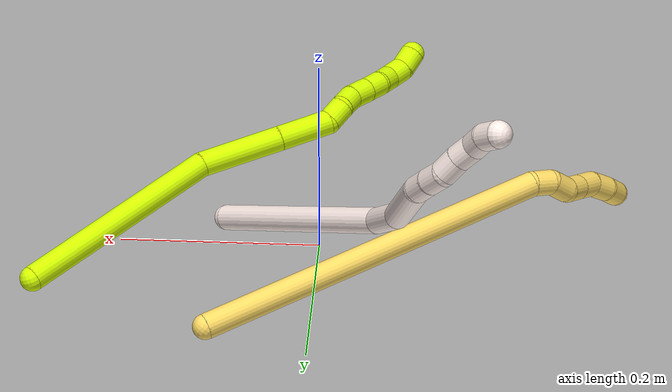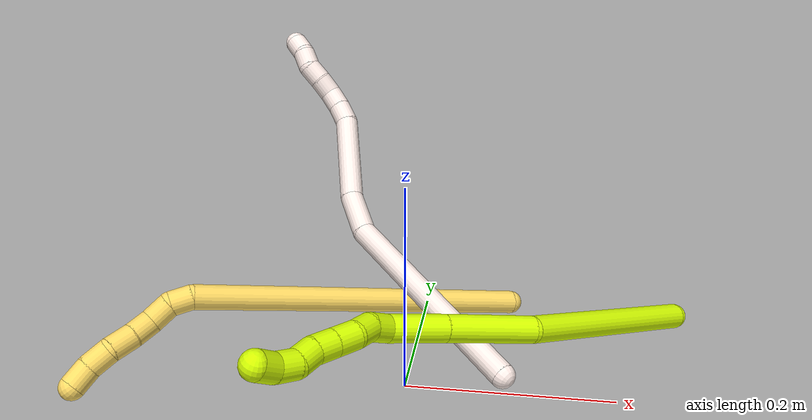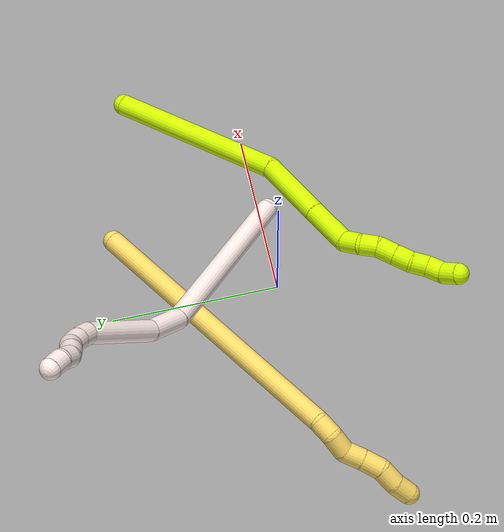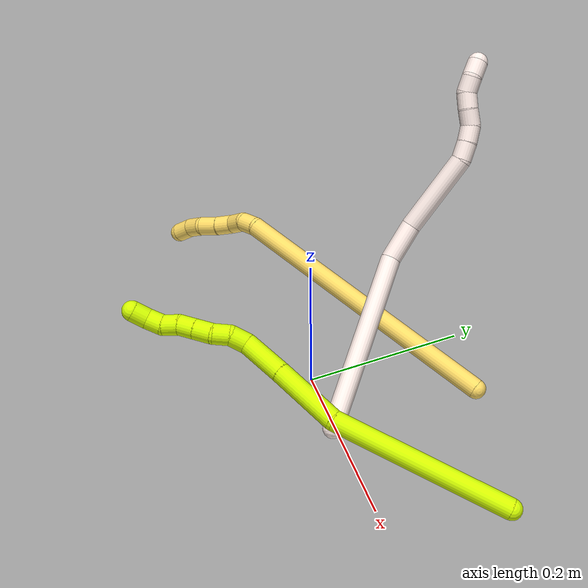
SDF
<sdf version="1.7">
 <world name="default">
  <model name="photoneo_s_sensor">
   <static>1</static>
   <pose>0 0 2 1.57079 1.57079 3.14159</pose>
   <link name="link">
    <inertial><mass>0.1</mass></inertial>
    <sensor name="sensor" type="depth">
     <update_rate>30</update_rate>
     <camera>
      <horizontal_fov>1.22</horizontal_fov>
      <image><width>1920</width><height>1200</height><format>B8G8R8</format></image>
      <clip><near>0.1</near><far>4</far></clip>
      <depth_camera><output>points</output></depth_camera>
     </camera>
     <plugin name="camera_plugin" filename="libgazebo_ros_depth_camera.so">
      <baseline>0.2</baseline>
      <alwaysOn>1</alwaysOn>
      <updateRate>0.0</updateRate>
      <cameraName>camera_ir</cameraName>
      <imageTopicName>/camera/color/image_raw</imageTopicName>
      <cameraInfoTopicName>/camera/color/camera_info</cameraInfoTopicName>
      <depthImageTopicName>/camera/depth/image_raw</depthImageTopicName>
      <depthImageCameraInfoTopicName>/camera/depth/camera_info</depthImageCameraInfoTopicName>
      <pointCloudTopicName>/camera/depth/points</pointCloudTopicName>
      <frameName>fr_optical</frameName>
      <pointCloudCutoff>0.1</pointCloudCutoff>
      <pointCloudCutoffMax>2.0</pointCloudCutoffMax>
      <distortionK1>0</distortionK1>
      <distortionK2>0</distortionK2>
      <distortionK3>0</distortionK3>
      <distortionT1>0</distortionT1>
      <distortionT2>0</distortionT2>
      <CxPrime>0</CxPrime>
      <Cx>0</Cx>
      <Cy>0</Cy>
      <focalLength>0</focalLength>
      <hackBaseline>0</hackBaseline>
     </plugin>
    </sensor>
   </link>
  </model>
  <model name="bin">
   <static>1</static>
   <link name="bottom">
    <collision name="collision-bottom">
     <pose>0 0 -0.01 0 -0 0</pose>
     <geometry><box><size>0.8 0.6 0.02</size></box></geometry>
     <surface>
      <friction><ode><mu>100</mu><mu2>100</mu2></ode></friction>
      <contact><collide_bitmask>65535</collide_bitmask></contact>
     </surface>
    </collision>
   </link>
   <link name="west_wall">
    <collision name="collision-west_wall">
     <pose>-0.41 0 0.1 0 -0 0</pose>
     <geometry><box><size>0.02 0.6 0.2</size></box></geometry>
     <surface>
      <friction><ode><mu>100</mu><mu2>100</mu2></ode></friction>
      <contact><collide_bitmask>65535</collide_bitmask></contact>
     </surface>
    </collision>
   </link>
   <link name="east_wall">
    <collision name="collision-east_wall">
     <pose>0.41 0 0.1 0 -0 0</pose>
     <geometry><box><size>0.02 0.6 0.2</size></box></geometry>
     <surface>
      <friction><ode><mu>100</mu><mu2>100</mu2></ode></friction>
      <contact><collide_bitmask>65535</collide_bitmask></contact>
     </surface>
    </collision>
   </link>
   <link name="south_wall">
    <collision name="collision-south_wall">
     <pose>0 -0.31 0.1 0 -0 0</pose>
     <geometry><box><size>0.8 0.02 0.2</size></box></geometry>
     <surface>
      <friction><ode><mu>100</mu><mu2>100</mu2></ode></friction>
      <contact><collide_bitmask>65535</collide_bitmask></contact>
     </surface>
    </collision>
   </link>
   <link name="north_wall">
    <collision name="collision-north_wall">
     <pose>0 0.31 0.1 0 -0 0</pose>
     <geometry><box><size>0.8 0.02 0.2</size></box></geometry>
     <surface>
      <friction><ode><mu>100</mu><mu2>100</mu2></ode></friction>
      <contact><collide_bitmask>65535</collide_bitmask></contact>
     </surface>
    </collision>
   </link>
  </model>
  <model name="5">
   <static>0</static>
   <link name="5">
    <collision name="collision-cylinder-e_1_1_4">
     <pose>-0.151243 -0.011301 -0.0975 3.0262 -0.995142 -2.92971</pose>
     <geometry><cylinder><radius>0.0125</radius><length>0.360602</length></cylinder></geometry>
     <surface>
      <friction><ode><mu>1.16</mu><mu2>1.16</mu2><slip1>0</slip1><slip2>0</slip2></ode></friction>
      <contact><ode><kp>1e+06</kp><kd>1</kd><max_vel>0</max_vel><min_depth>0.001</min_depth></ode></contact>
     </surface>
    </collision>
    <visual name="visual-cylinder-e_1_1_4">
     <pose>-0.151243 -0.011301 -0.0975 3.0262 -0.995142 -2.92971</pose>
     <geometry><cylinder><radius>0.0125</radius><length>0.360602</length></cylinder></geometry>
     <material><ambient>1 0.858824 0.4 1</ambient></material>
    </visual>
    <collision name="collision-cylinder-e_2_4_5">
     <pose>-0.309245 -0.025326 -0.203125 2.818 -0.667838 -2.26205</pose>
     <geometry><cylinder><radius>0.0125</radius><length>0.021827</length></cylinder></geometry>
     <surface>
      <friction><ode><mu>1.16</mu><mu2>1.16</mu2><slip1>0</slip1><slip2>0</slip2></ode></friction>
      <contact><ode><kp>1e+06</kp><kd>1</kd><max_vel>0</max_vel><min_depth>0.001</min_depth></ode></contact>
     </surface>
    </collision>
    <visual name="visual-cylinder-e_2_4_5">
     <pose>-0.309245 -0.025326 -0.203125 2.818 -0.667838 -2.26205</pose>
     <geometry><cylinder><radius>0.0125</radius><length>0.021827</length></cylinder></geometry>
     <material><ambient>1 0.858824 0.4 1</ambient></material>
    </visual>
    <collision name="collision-cylinder-e_3_5_6">
     <pose>-0.318658 -0.033762 -0.221487 2.63272 -0.22271 -0.812101</pose>
     <geometry><cylinder><radius>0.0125</radius><length>0.024041</length></cylinder></geometry>
     <surface>
      <friction><ode><mu>1.16</mu><mu2>1.16</mu2><slip1>0</slip1><slip2>0</slip2></ode></friction>
      <contact><ode><kp>1e+06</kp><kd>1</kd><max_vel>0</max_vel><min_depth>0.001</min_depth></ode></contact>
     </surface>
    </collision>
    <visual name="visual-cylinder-e_3_5_6">
     <pose>-0.318658 -0.033762 -0.221487 2.63272 -0.22271 -0.812101</pose>
     <geometry><cylinder><radius>0.0125</radius><length>0.024041</length></cylinder></geometry>
     <material><ambient>1 0.858824 0.4 1</ambient></material>
    </visual>
    <collision name="collision-cylinder-e_4_6_7">
     <pose>-0.327417 -0.047158 -0.237602 2.22374 -0.562867 -1.05878</pose>
     <geometry><cylinder><radius>0.0125</radius><length>0.022878</length></cylinder></geometry>
     <surface>
      <friction><ode><mu>1.16</mu><mu2>1.16</mu2><slip1>0</slip1><slip2>0</slip2></ode></friction>
      <contact><ode><kp>1e+06</kp><kd>1</kd><max_vel>0</max_vel><min_depth>0.001</min_depth></ode></contact>
     </surface>
    </collision>
    <visual name="visual-cylinder-e_4_6_7">
     <pose>-0.327417 -0.047158 -0.237602 2.22374 -0.562867 -1.05878</pose>
     <geometry><cylinder><radius>0.0125</radius><length>0.022878</length></cylinder></geometry>
     <material><ambient>1 0.858824 0.4 1</ambient></material>
    </visual>
    <collision name="collision-cylinder-e_5_7_8">
     <pose>-0.340691 -0.062167 -0.250282 2.31921 -0.622208 -1.27079</pose>
     <geometry><cylinder><radius>0.0125</radius><length>0.024603</length></cylinder></geometry>
     <surface>
      <friction><ode><mu>1.16</mu><mu2>1.16</mu2><slip1>0</slip1><slip2>0</slip2></ode></friction>
      <contact><ode><kp>1e+06</kp><kd>1</kd><max_vel>0</max_vel><min_depth>0.001</min_depth></ode></contact>
     </surface>
    </collision>
    <visual name="visual-cylinder-e_5_7_8">
     <pose>-0.340691 -0.062167 -0.250282 2.31921 -0.622208 -1.27079</pose>
     <geometry><cylinder><radius>0.0125</radius><length>0.024603</length></cylinder></geometry>
     <material><ambient>1 0.858824 0.4 1</ambient></material>
    </visual>
    <collision name="collision-cylinder-e_6_8_9">
     <pose>-0.351577 -0.075278 -0.266523 2.59169 -0.323825 -1.04971</pose>
     <geometry><cylinder><radius>0.0125</radius><length>0.023357</length></cylinder></geometry>
     <surface>
      <friction><ode><mu>1.16</mu><mu2>1.16</mu2><slip1>0</slip1><slip2>0</slip2></ode></friction>
      <contact><ode><kp>1e+06</kp><kd>1</kd><max_vel>0</max_vel><min_depth>0.001</min_depth></ode></contact>
     </surface>
    </collision>
    <visual name="visual-cylinder-e_6_8_9">
     <pose>-0.351577 -0.075278 -0.266523 2.59169 -0.323825 -1.04971</pose>
     <geometry><cylinder><radius>0.0125</radius><length>0.023357</length></cylinder></geometry>
     <material><ambient>1 0.858824 0.4 1</ambient></material>
    </visual>
    <collision name="collision-cylinder-e_7_9_2">
     <pose>-0.358095 -0.088988 -0.283585 2.33677 -0.249558 -0.573154</pose>
     <geometry><cylinder><radius>0.0125</radius><length>0.022692</length></cylinder></geometry>
     <surface>
      <friction><ode><mu>1.16</mu><mu2>1.16</mu2><slip1>0</slip1><slip2>0</slip2></ode></friction>
      <contact><ode><kp>1e+06</kp><kd>1</kd><max_vel>0</max_vel><min_depth>0.001</min_depth></ode></contact>
     </surface>
    </collision>
    <visual name="visual-cylinder-e_7_9_2">
     <pose>-0.358095 -0.088988 -0.283585 2.33677 -0.249558 -0.573154</pose>
     <geometry><cylinder><radius>0.0125</radius><length>0.022692</length></cylinder></geometry>
     <material><ambient>1 0.858824 0.4 1</ambient></material>
    </visual>
    <collision name="collision-sphere-2">
     <pose>-0.360897 -0.096912 -0.291206 0 -0 0</pose>
     <geometry><sphere><radius>0.0125</radius></sphere></geometry>
     <surface>
      <friction><ode><mu>1.16</mu><mu2>1.16</mu2><slip1>0</slip1><slip2>0</slip2></ode></friction>
      <contact><ode><kp>1e+06</kp><kd>1</kd><max_vel>0</max_vel><min_depth>0.001</min_depth></ode></contact>
     </surface>
    </collision>
    <visual name="visual-sphere-2">
     <pose>-0.360897 -0.096912 -0.291206 0 -0 0</pose>
     <geometry><sphere><radius>0.0125</radius></sphere></geometry>
     <material><ambient>1 0.858824 0.4 1</ambient></material>
    </visual>
    <collision name="collision-sphere-9">
     <pose>-0.355293 -0.081064 -0.275963 0 -0 0</pose>
     <geometry><sphere><radius>0.0125</radius></sphere></geometry>
     <surface>
      <friction><ode><mu>1.16</mu><mu2>1.16</mu2><slip1>0</slip1><slip2>0</slip2></ode></friction>
      <contact><ode><kp>1e+06</kp><kd>1</kd><max_vel>0</max_vel><min_depth>0.001</min_depth></ode></contact>
     </surface>
    </collision>
    <visual name="visual-sphere-9">
     <pose>-0.355293 -0.081064 -0.275963 0 -0 0</pose>
     <geometry><sphere><radius>0.0125</radius></sphere></geometry>
     <material><ambient>1 0.858824 0.4 1</ambient></material>
    </visual>
    <collision name="collision-sphere-4">
     <pose>-0.302486 -0.022601 -0.195001 0 -0 0</pose>
     <geometry><sphere><radius>0.0125</radius></sphere></geometry>
     <surface>
      <friction><ode><mu>1.16</mu><mu2>1.16</mu2><slip1>0</slip1><slip2>0</slip2></ode></friction>
      <contact><ode><kp>1e+06</kp><kd>1</kd><max_vel>0</max_vel><min_depth>0.001</min_depth></ode></contact>
     </surface>
    </collision>
    <visual name="visual-sphere-4">
     <pose>-0.302486 -0.022601 -0.195001 0 -0 0</pose>
     <geometry><sphere><radius>0.0125</radius></sphere></geometry>
     <material><ambient>1 0.858824 0.4 1</ambient></material>
    </visual>
    <collision name="collision-sphere-1">
     <geometry><sphere><radius>0.0125</radius></sphere></geometry>
     <surface>
      <friction><ode><mu>1.16</mu><mu2>1.16</mu2><slip1>0</slip1><slip2>0</slip2></ode></friction>
      <contact><ode><kp>1e+06</kp><kd>1</kd><max_vel>0</max_vel><min_depth>0.001</min_depth></ode></contact>
     </surface>
    </collision>
    <visual name="visual-sphere-1">
     <geometry><sphere><radius>0.0125</radius></sphere></geometry>
     <material><ambient>1 0.858824 0.4 1</ambient></material>
    </visual>
    <collision name="collision-sphere-8">
     <pose>-0.34786 -0.069492 -0.257084 0 -0 0</pose>
     <geometry><sphere><radius>0.0125</radius></sphere></geometry>
     <surface>
      <friction><ode><mu>1.16</mu><mu2>1.16</mu2><slip1>0</slip1><slip2>0</slip2></ode></friction>
      <contact><ode><kp>1e+06</kp><kd>1</kd><max_vel>0</max_vel><min_depth>0.001</min_depth></ode></contact>
     </surface>
    </collision>
    <visual name="visual-sphere-8">
     <pose>-0.34786 -0.069492 -0.257084 0 -0 0</pose>
     <geometry><sphere><radius>0.0125</radius></sphere></geometry>
     <material><ambient>1 0.858824 0.4 1</ambient></material>
    </visual>
    <collision name="collision-sphere-5">
     <pose>-0.316003 -0.028051 -0.211249 0 -0 0</pose>
     <geometry><sphere><radius>0.0125</radius></sphere></geometry>
     <surface>
      <friction><ode><mu>1.16</mu><mu2>1.16</mu2><slip1>0</slip1><slip2>0</slip2></ode></friction>
      <contact><ode><kp>1e+06</kp><kd>1</kd><max_vel>0</max_vel><min_depth>0.001</min_depth></ode></contact>
     </surface>
    </collision>
    <visual name="visual-sphere-5">
     <pose>-0.316003 -0.028051 -0.211249 0 -0 0</pose>
     <geometry><sphere><radius>0.0125</radius></sphere></geometry>
     <material><ambient>1 0.858824 0.4 1</ambient></material>
    </visual>
    <collision name="collision-sphere-6">
     <pose>-0.321313 -0.039474 -0.231725 0 -0 0</pose>
     <geometry><sphere><radius>0.0125</radius></sphere></geometry>
     <surface>
      <friction><ode><mu>1.16</mu><mu2>1.16</mu2><slip1>0</slip1><slip2>0</slip2></ode></friction>
      <contact><ode><kp>1e+06</kp><kd>1</kd><max_vel>0</max_vel><min_depth>0.001</min_depth></ode></contact>
     </surface>
    </collision>
    <visual name="visual-sphere-6">
     <pose>-0.321313 -0.039474 -0.231725 0 -0 0</pose>
     <geometry><sphere><radius>0.0125</radius></sphere></geometry>
     <material><ambient>1 0.858824 0.4 1</ambient></material>
    </visual>
    <collision name="collision-sphere-7">
     <pose>-0.333521 -0.054842 -0.24348 0 -0 0</pose>
     <geometry><sphere><radius>0.0125</radius></sphere></geometry>
     <surface>
      <friction><ode><mu>1.16</mu><mu2>1.16</mu2><slip1>0</slip1><slip2>0</slip2></ode></friction>
      <contact><ode><kp>1e+06</kp><kd>1</kd><max_vel>0</max_vel><min_depth>0.001</min_depth></ode></contact>
     </surface>
    </collision>
    <visual name="visual-sphere-7">
     <pose>-0.333521 -0.054842 -0.24348 0 -0 0</pose>
     <geometry><sphere><radius>0.0125</radius></sphere></geometry>
     <material><ambient>1 0.858824 0.4 1</ambient></material>
    </visual>
    <inertial>
     <pose>-0.202319 -0.023651 -0.138342 0 -0 0</pose>
     <mass>0.5</mass>
     <inertia>
      <ixx>-0.002568</ixx>
      <ixy>0</ixy>
      <ixz>0</ixz>
      <iyy>0.003423</iyy>
      <iyz>0</iyz>
      <izz>0.003524</izz>
     </inertia>
    </inertial>
   </link>
   <pose>0.096724 0.17907 0.014795 0.717834 0.679595 0.843999</pose>
  </model>
  <model name="11">
   <static>0</static>
   <link name="11">
    <collision name="collision-cylinder-e_1_1_4">
     <pose>-0.001848 0.008343 0.112461 -0.074051 -0.016384 0.000607</pose>
     <geometry><cylinder><radius>0.0125</radius><length>0.22557</length></cylinder></geometry>
     <surface>
      <friction><ode><mu>1.16</mu><mu2>1.16</mu2><slip1>0</slip1><slip2>0</slip2></ode></friction>
      <contact><ode><kp>1e+06</kp><kd>1</kd><max_vel>0</max_vel><min_depth>0.001</min_depth></ode></contact>
     </surface>
    </collision>
    <visual name="visual-cylinder-e_1_1_4">
     <pose>-0.001848 0.008343 0.112461 -0.074051 -0.016384 0.000607</pose>
     <geometry><cylinder><radius>0.0125</radius><length>0.22557</length></cylinder></geometry>
     <material><ambient>1 0.933333 0.909804 1</ambient></material>
    </visual>
    <collision name="collision-cylinder-e_2_4_5">
     <pose>-0.007943 0.025814 0.247265 -0.387839 -0.174175 0.034289</pose>
     <geometry><cylinder><radius>0.0125</radius><length>0.049015</length></cylinder></geometry>
     <surface>
      <friction><ode><mu>1.16</mu><mu2>1.16</mu2><slip1>0</slip1><slip2>0</slip2></ode></friction>
      <contact><ode><kp>1e+06</kp><kd>1</kd><max_vel>0</max_vel><min_depth>0.001</min_depth></ode></contact>
     </surface>
    </collision>
    <visual name="visual-cylinder-e_2_4_5">
     <pose>-0.007943 0.025814 0.247265 -0.387839 -0.174175 0.034289</pose>
     <geometry><cylinder><radius>0.0125</radius><length>0.049015</length></cylinder></geometry>
     <material><ambient>1 0.933333 0.909804 1</ambient></material>
    </visual>
    <collision name="collision-cylinder-e_3_5_6">
     <pose>-0.023353 0.064978 0.309025 -0.651138 -0.221576 0.075072</pose>
     <geometry><cylinder><radius>0.0125</radius><length>0.101595</length></cylinder></geometry>
     <surface>
      <friction><ode><mu>1.16</mu><mu2>1.16</mu2><slip1>0</slip1><slip2>0</slip2></ode></friction>
      <contact><ode><kp>1e+06</kp><kd>1</kd><max_vel>0</max_vel><min_depth>0.001</min_depth></ode></contact>
     </surface>
    </collision>
    <visual name="visual-cylinder-e_3_5_6">
     <pose>-0.023353 0.064978 0.309025 -0.651138 -0.221576 0.075072</pose>
     <geometry><cylinder><radius>0.0125</radius><length>0.101595</length></cylinder></geometry>
     <material><ambient>1 0.933333 0.909804 1</ambient></material>
    </visual>
    <collision name="collision-cylinder-e_4_6_7">
     <pose>-0.033818 0.099792 0.358454 -0.445286 0.062943 -0.014255</pose>
     <geometry><cylinder><radius>0.0125</radius><length>0.022233</length></cylinder></geometry>
     <surface>
      <friction><ode><mu>1.16</mu><mu2>1.16</mu2><slip1>0</slip1><slip2>0</slip2></ode></friction>
      <contact><ode><kp>1e+06</kp><kd>1</kd><max_vel>0</max_vel><min_depth>0.001</min_depth></ode></contact>
     </surface>
    </collision>
    <visual name="visual-cylinder-e_4_6_7">
     <pose>-0.033818 0.099792 0.358454 -0.445286 0.062943 -0.014255</pose>
     <geometry><cylinder><radius>0.0125</radius><length>0.022233</length></cylinder></geometry>
     <material><ambient>1 0.933333 0.909804 1</ambient></material>
    </visual>
    <collision name="collision-cylinder-e_5_7_8">
     <pose>-0.031373 0.108463 0.378081 -0.384773 0.166702 -0.032545</pose>
     <geometry><cylinder><radius>0.0125</radius><length>0.021037</length></cylinder></geometry>
     <surface>
      <friction><ode><mu>1.16</mu><mu2>1.16</mu2><slip1>0</slip1><slip2>0</slip2></ode></friction>
      <contact><ode><kp>1e+06</kp><kd>1</kd><max_vel>0</max_vel><min_depth>0.001</min_depth></ode></contact>
     </surface>
    </collision>
    <visual name="visual-cylinder-e_5_7_8">
     <pose>-0.031373 0.108463 0.378081 -0.384773 0.166702 -0.032545</pose>
     <geometry><cylinder><radius>0.0125</radius><length>0.021037</length></cylinder></geometry>
     <material><ambient>1 0.933333 0.909804 1</ambient></material>
    </visual>
    <collision name="collision-cylinder-e_6_8_9">
     <pose>-0.024023 0.116579 0.395192 -0.512881 0.577416 -0.155444</pose>
     <geometry><cylinder><radius>0.0125</radius><length>0.020536</length></cylinder></geometry>
     <surface>
      <friction><ode><mu>1.16</mu><mu2>1.16</mu2><slip1>0</slip1><slip2>0</slip2></ode></friction>
      <contact><ode><kp>1e+06</kp><kd>1</kd><max_vel>0</max_vel><min_depth>0.001</min_depth></ode></contact>
     </surface>
    </collision>
    <visual name="visual-cylinder-e_6_8_9">
     <pose>-0.024023 0.116579 0.395192 -0.512881 0.577416 -0.155444</pose>
     <geometry><cylinder><radius>0.0125</radius><length>0.020536</length></cylinder></geometry>
     <material><ambient>1 0.933333 0.909804 1</ambient></material>
    </visual>
    <collision name="collision-cylinder-e_7_9_10">
     <pose>-0.013751 0.12415 0.410879 -0.388261 0.485277 -0.097249</pose>
     <geometry><cylinder><radius>0.0125</radius><length>0.020009</length></cylinder></geometry>
     <surface>
      <friction><ode><mu>1.16</mu><mu2>1.16</mu2><slip1>0</slip1><slip2>0</slip2></ode></friction>
      <contact><ode><kp>1e+06</kp><kd>1</kd><max_vel>0</max_vel><min_depth>0.001</min_depth></ode></contact>
     </surface>
    </collision>
    <visual name="visual-cylinder-e_7_9_10">
     <pose>-0.013751 0.12415 0.410879 -0.388261 0.485277 -0.097249</pose>
     <geometry><cylinder><radius>0.0125</radius><length>0.020009</length></cylinder></geometry>
     <material><ambient>1 0.933333 0.909804 1</ambient></material>
    </visual>
    <collision name="collision-cylinder-e_8_10_11">
     <pose>-0.008237 0.132613 0.427625 -0.538637 0.084865 -0.023438</pose>
     <geometry><cylinder><radius>0.0125</radius><length>0.020005</length></cylinder></geometry>
     <surface>
      <friction><ode><mu>1.16</mu><mu2>1.16</mu2><slip1>0</slip1><slip2>0</slip2></ode></friction>
      <contact><ode><kp>1e+06</kp><kd>1</kd><max_vel>0</max_vel><min_depth>0.001</min_depth></ode></contact>
     </surface>
    </collision>
    <visual name="visual-cylinder-e_8_10_11">
     <pose>-0.008237 0.132613 0.427625 -0.538637 0.084865 -0.023438</pose>
     <geometry><cylinder><radius>0.0125</radius><length>0.020005</length></cylinder></geometry>
     <material><ambient>1 0.933333 0.909804 1</ambient></material>
    </visual>
    <collision name="collision-cylinder-e_9_11_2">
     <pose>-0.007645 0.14002 0.445911 -0.231591 -0.025607 0.002979</pose>
     <geometry><cylinder><radius>0.0125</radius><length>0.02</length></cylinder></geometry>
     <surface>
      <friction><ode><mu>1.16</mu><mu2>1.16</mu2><slip1>0</slip1><slip2>0</slip2></ode></friction>
      <contact><ode><kp>1e+06</kp><kd>1</kd><max_vel>0</max_vel><min_depth>0.001</min_depth></ode></contact>
     </surface>
    </collision>
    <visual name="visual-cylinder-e_9_11_2">
     <pose>-0.007645 0.14002 0.445911 -0.231591 -0.025607 0.002979</pose>
     <geometry><cylinder><radius>0.0125</radius><length>0.02</length></cylinder></geometry>
     <material><ambient>1 0.933333 0.909804 1</ambient></material>
    </visual>
    <collision name="collision-sphere-2">
     <pose>-0.007901 0.142315 0.455641 0 -0 0</pose>
     <geometry><sphere><radius>0.0125</radius></sphere></geometry>
     <surface>
      <friction><ode><mu>1.16</mu><mu2>1.16</mu2><slip1>0</slip1><slip2>0</slip2></ode></friction>
      <contact><ode><kp>1e+06</kp><kd>1</kd><max_vel>0</max_vel><min_depth>0.001</min_depth></ode></contact>
     </surface>
    </collision>
    <visual name="visual-sphere-2">
     <pose>-0.007901 0.142315 0.455641 0 -0 0</pose>
     <geometry><sphere><radius>0.0125</radius></sphere></geometry>
     <material><ambient>1 0.933333 0.909804 1</ambient></material>
    </visual>
    <collision name="collision-sphere-11">
     <pose>-0.007389 0.137726 0.436181 0 -0 0</pose>
     <geometry><sphere><radius>0.0125</radius></sphere></geometry>
     <surface>
      <friction><ode><mu>1.16</mu><mu2>1.16</mu2><slip1>0</slip1><slip2>0</slip2></ode></friction>
      <contact><ode><kp>1e+06</kp><kd>1</kd><max_vel>0</max_vel><min_depth>0.001</min_depth></ode></contact>
     </surface>
    </collision>
    <visual name="visual-sphere-11">
     <pose>-0.007389 0.137726 0.436181 0 -0 0</pose>
     <geometry><sphere><radius>0.0125</radius></sphere></geometry>
     <material><ambient>1 0.933333 0.909804 1</ambient></material>
    </visual>
    <collision name="collision-sphere-10">
     <pose>-0.009084 0.127501 0.41907 0 -0 0</pose>
     <geometry><sphere><radius>0.0125</radius></sphere></geometry>
     <surface>
      <friction><ode><mu>1.16</mu><mu2>1.16</mu2><slip1>0</slip1><slip2>0</slip2></ode></friction>
      <contact><ode><kp>1e+06</kp><kd>1</kd><max_vel>0</max_vel><min_depth>0.001</min_depth></ode></contact>
     </surface>
    </collision>
    <visual name="visual-sphere-10">
     <pose>-0.009084 0.127501 0.41907 0 -0 0</pose>
     <geometry><sphere><radius>0.0125</radius></sphere></geometry>
     <material><ambient>1 0.933333 0.909804 1</ambient></material>
    </visual>
    <collision name="collision-sphere-9">
     <pose>-0.018418 0.1208 0.402689 0 -0 0</pose>
     <geometry><sphere><radius>0.0125</radius></sphere></geometry>
     <surface>
      <friction><ode><mu>1.16</mu><mu2>1.16</mu2><slip1>0</slip1><slip2>0</slip2></ode></friction>
      <contact><ode><kp>1e+06</kp><kd>1</kd><max_vel>0</max_vel><min_depth>0.001</min_depth></ode></contact>
     </surface>
    </collision>
    <visual name="visual-sphere-9">
     <pose>-0.018418 0.1208 0.402689 0 -0 0</pose>
     <geometry><sphere><radius>0.0125</radius></sphere></geometry>
     <material><ambient>1 0.933333 0.909804 1</ambient></material>
    </visual>
    <collision name="collision-sphere-4">
     <pose>-0.003696 0.016686 0.224921 0 -0 0</pose>
     <geometry><sphere><radius>0.0125</radius></sphere></geometry>
     <surface>
      <friction><ode><mu>1.16</mu><mu2>1.16</mu2><slip1>0</slip1><slip2>0</slip2></ode></friction>
      <contact><ode><kp>1e+06</kp><kd>1</kd><max_vel>0</max_vel><min_depth>0.001</min_depth></ode></contact>
     </surface>
    </collision>
    <visual name="visual-sphere-4">
     <pose>-0.003696 0.016686 0.224921 0 -0 0</pose>
     <geometry><sphere><radius>0.0125</radius></sphere></geometry>
     <material><ambient>1 0.933333 0.909804 1</ambient></material>
    </visual>
    <collision name="collision-sphere-1">
     <geometry><sphere><radius>0.0125</radius></sphere></geometry>
     <surface>
      <friction><ode><mu>1.16</mu><mu2>1.16</mu2><slip1>0</slip1><slip2>0</slip2></ode></friction>
      <contact><ode><kp>1e+06</kp><kd>1</kd><max_vel>0</max_vel><min_depth>0.001</min_depth></ode></contact>
     </surface>
    </collision>
    <visual name="visual-sphere-1">
     <geometry><sphere><radius>0.0125</radius></sphere></geometry>
     <material><ambient>1 0.933333 0.909804 1</ambient></material>
    </visual>
    <collision name="collision-sphere-8">
     <pose>-0.029628 0.112357 0.387696 0 -0 0</pose>
     <geometry><sphere><radius>0.0125</radius></sphere></geometry>
     <surface>
      <friction><ode><mu>1.16</mu><mu2>1.16</mu2><slip1>0</slip1><slip2>0</slip2></ode></friction>
      <contact><ode><kp>1e+06</kp><kd>1</kd><max_vel>0</max_vel><min_depth>0.001</min_depth></ode></contact>
     </surface>
    </collision>
    <visual name="visual-sphere-8">
     <pose>-0.029628 0.112357 0.387696 0 -0 0</pose>
     <geometry><sphere><radius>0.0125</radius></sphere></geometry>
     <material><ambient>1 0.933333 0.909804 1</ambient></material>
    </visual>
    <collision name="collision-sphere-5">
     <pose>-0.01219 0.034942 0.269609 0 -0 0</pose>
     <geometry><sphere><radius>0.0125</radius></sphere></geometry>
     <surface>
      <friction><ode><mu>1.16</mu><mu2>1.16</mu2><slip1>0</slip1><slip2>0</slip2></ode></friction>
      <contact><ode><kp>1e+06</kp><kd>1</kd><max_vel>0</max_vel><min_depth>0.001</min_depth></ode></contact>
     </surface>
    </collision>
    <visual name="visual-sphere-5">
     <pose>-0.01219 0.034942 0.269609 0 -0 0</pose>
     <geometry><sphere><radius>0.0125</radius></sphere></geometry>
     <material><ambient>1 0.933333 0.909804 1</ambient></material>
    </visual>
    <collision name="collision-sphere-6">
     <pose>-0.034517 0.095013 0.348442 0 -0 0</pose>
     <geometry><sphere><radius>0.0125</radius></sphere></geometry>
     <surface>
      <friction><ode><mu>1.16</mu><mu2>1.16</mu2><slip1>0</slip1><slip2>0</slip2></ode></friction>
      <contact><ode><kp>1e+06</kp><kd>1</kd><max_vel>0</max_vel><min_depth>0.001</min_depth></ode></contact>
     </surface>
    </collision>
    <visual name="visual-sphere-6">
     <pose>-0.034517 0.095013 0.348442 0 -0 0</pose>
     <geometry><sphere><radius>0.0125</radius></sphere></geometry>
     <material><ambient>1 0.933333 0.909804 1</ambient></material>
    </visual>
    <collision name="collision-sphere-7">
     <pose>-0.033118 0.10457 0.368467 0 -0 0</pose>
     <geometry><sphere><radius>0.0125</radius></sphere></geometry>
     <surface>
      <friction><ode><mu>1.16</mu><mu2>1.16</mu2><slip1>0</slip1><slip2>0</slip2></ode></friction>
      <contact><ode><kp>1e+06</kp><kd>1</kd><max_vel>0</max_vel><min_depth>0.001</min_depth></ode></contact>
     </surface>
    </collision>
    <visual name="visual-sphere-7">
     <pose>-0.033118 0.10457 0.368467 0 -0 0</pose>
     <geometry><sphere><radius>0.0125</radius></sphere></geometry>
     <material><ambient>1 0.933333 0.909804 1</ambient></material>
    </visual>
    <inertial>
     <pose>-0.011353 0.049161 0.237232 0 -0 0</pose>
     <mass>0.5</mass>
     <inertia>
      <ixx>0.001081</ixx>
      <ixy>0</ixy>
      <ixz>0</ixz>
      <iyy>0.001074</iyy>
      <iyz>0</iyz>
      <izz>-6.2e-05</izz>
     </inertia>
    </inertial>
   </link>
   <pose>0.093274 -0.008686 0.024153 1.22771 -0.363778 -2.12601</pose>
  </model>
  <model name="15">
   <static>0</static>
   <link name="15">
    <collision name="collision-cylinder-e_1_1_4">
     <pose>-0.102703 -0.033457 0.005572 1.40578 -1.25182 -1.09904</pose>
     <geometry><cylinder><radius>0.0125</radius><length>0.216318</length></cylinder></geometry>
     <surface>
      <friction><ode><mu>1.16</mu><mu2>1.16</mu2><slip1>0</slip1><slip2>0</slip2></ode></friction>
      <contact><ode><kp>1e+06</kp><kd>1</kd><max_vel>0</max_vel><min_depth>0.001</min_depth></ode></contact>
     </surface>
    </collision>
    <visual name="visual-cylinder-e_1_1_4">
     <pose>-0.102703 -0.033457 0.005572 1.40578 -1.25182 -1.09904</pose>
     <geometry><cylinder><radius>0.0125</radius><length>0.216318</length></cylinder></geometry>
     <material><ambient>0.835294 1 0 1</ambient></material>
    </visual>
    <collision name="collision-cylinder-e_2_4_5">
     <pose>-0.247121 -0.067158 0.006174 3.09244 -1.45209 -3.08623</pose>
     <geometry><cylinder><radius>0.0125</radius><length>0.08402</length></cylinder></geometry>
     <surface>
      <friction><ode><mu>1.16</mu><mu2>1.16</mu2><slip1>0</slip1><slip2>0</slip2></ode></friction>
      <contact><ode><kp>1e+06</kp><kd>1</kd><max_vel>0</max_vel><min_depth>0.001</min_depth></ode></contact>
     </surface>
    </collision>
    <visual name="visual-cylinder-e_2_4_5">
     <pose>-0.247121 -0.067158 0.006174 3.09244 -1.45209 -3.08623</pose>
     <geometry><cylinder><radius>0.0125</radius><length>0.08402</length></cylinder></geometry>
     <material><ambient>0.835294 1 0 1</ambient></material>
    </visual>
    <collision name="collision-cylinder-e_3_5_6">
     <pose>-0.315806 -0.068167 -0.002082 2.91323 -1.44633 -2.8832</pose>
     <geometry><cylinder><radius>0.0125</radius><length>0.054361</length></cylinder></geometry>
     <surface>
      <friction><ode><mu>1.16</mu><mu2>1.16</mu2><slip1>0</slip1><slip2>0</slip2></ode></friction>
      <contact><ode><kp>1e+06</kp><kd>1</kd><max_vel>0</max_vel><min_depth>0.001</min_depth></ode></contact>
     </surface>
    </collision>
    <visual name="visual-cylinder-e_3_5_6">
     <pose>-0.315806 -0.068167 -0.002082 2.91323 -1.44633 -2.8832</pose>
     <geometry><cylinder><radius>0.0125</radius><length>0.054361</length></cylinder></geometry>
     <material><ambient>0.835294 1 0 1</ambient></material>
    </visual>
    <collision name="collision-cylinder-e_4_6_7">
     <pose>-0.3527 -0.07282 -0.002441 0.925623 -1.11473 -0.603021</pose>
     <geometry><cylinder><radius>0.0125</radius><length>0.022107</length></cylinder></geometry>
     <surface>
      <friction><ode><mu>1.16</mu><mu2>1.16</mu2><slip1>0</slip1><slip2>0</slip2></ode></friction>
      <contact><ode><kp>1e+06</kp><kd>1</kd><max_vel>0</max_vel><min_depth>0.001</min_depth></ode></contact>
     </surface>
    </collision>
    <visual name="visual-cylinder-e_4_6_7">
     <pose>-0.3527 -0.07282 -0.002441 0.925623 -1.11473 -0.603021</pose>
     <geometry><cylinder><radius>0.0125</radius><length>0.022107</length></cylinder></geometry>
     <material><ambient>0.835294 1 0 1</ambient></material>
    </visual>
    <collision name="collision-cylinder-e_5_7_8">
     <pose>-0.370446 -0.083345 0.000957 1.49992 -0.866152 -0.813354</pose>
     <geometry><cylinder><radius>0.0125</radius><length>0.020538</length></cylinder></geometry>
     <surface>
      <friction><ode><mu>1.16</mu><mu2>1.16</mu2><slip1>0</slip1><slip2>0</slip2></ode></friction>
      <contact><ode><kp>1e+06</kp><kd>1</kd><max_vel>0</max_vel><min_depth>0.001</min_depth></ode></contact>
     </surface>
    </collision>
    <visual name="visual-cylinder-e_5_7_8">
     <pose>-0.370446 -0.083345 0.000957 1.49992 -0.866152 -0.813354</pose>
     <geometry><cylinder><radius>0.0125</radius><length>0.020538</length></cylinder></geometry>
     <material><ambient>0.835294 1 0 1</ambient></material>
    </visual>
    <collision name="collision-cylinder-e_6_8_9">
     <pose>-0.388075 -0.094835 -1.4e-05 1.85956 -1.09398 -1.36906</pose>
     <geometry><cylinder><radius>0.0125</radius><length>0.022071</length></cylinder></geometry>
     <surface>
      <friction><ode><mu>1.16</mu><mu2>1.16</mu2><slip1>0</slip1><slip2>0</slip2></ode></friction>
      <contact><ode><kp>1e+06</kp><kd>1</kd><max_vel>0</max_vel><min_depth>0.001</min_depth></ode></contact>
     </surface>
    </collision>
    <visual name="visual-cylinder-e_6_8_9">
     <pose>-0.388075 -0.094835 -1.4e-05 1.85956 -1.09398 -1.36906</pose>
     <geometry><cylinder><radius>0.0125</radius><length>0.022071</length></cylinder></geometry>
     <material><ambient>0.835294 1 0 1</ambient></material>
    </visual>
    <collision name="collision-cylinder-e_7_9_10">
     <pose>-0.406803 -0.104196 -0.002572 1.81351 -1.09108 -1.31936</pose>
     <geometry><cylinder><radius>0.0125</radius><length>0.020118</length></cylinder></geometry>
     <surface>
      <friction><ode><mu>1.16</mu><mu2>1.16</mu2><slip1>0</slip1><slip2>0</slip2></ode></friction>
      <contact><ode><kp>1e+06</kp><kd>1</kd><max_vel>0</max_vel><min_depth>0.001</min_depth></ode></contact>
     </surface>
    </collision>
    <visual name="visual-cylinder-e_7_9_10">
     <pose>-0.406803 -0.104196 -0.002572 1.81351 -1.09108 -1.31936</pose>
     <geometry><cylinder><radius>0.0125</radius><length>0.020118</length></cylinder></geometry>
     <material><ambient>0.835294 1 0 1</ambient></material>
    </visual>
    <collision name="collision-cylinder-e_8_10_11">
     <pose>-0.423011 -0.115477 -0.005118 1.77892 -0.81081 -0.973591</pose>
     <geometry><cylinder><radius>0.0125</radius><length>0.020101</length></cylinder></geometry>
     <surface>
      <friction><ode><mu>1.16</mu><mu2>1.16</mu2><slip1>0</slip1><slip2>0</slip2></ode></friction>
      <contact><ode><kp>1e+06</kp><kd>1</kd><max_vel>0</max_vel><min_depth>0.001</min_depth></ode></contact>
     </surface>
    </collision>
    <visual name="visual-cylinder-e_8_10_11">
     <pose>-0.423011 -0.115477 -0.005118 1.77892 -0.81081 -0.973591</pose>
     <geometry><cylinder><radius>0.0125</radius><length>0.020101</length></cylinder></geometry>
     <material><ambient>0.835294 1 0 1</ambient></material>
    </visual>
    <collision name="collision-cylinder-e_9_11_12">
     <pose>-0.439643 -0.125853 -0.006369 1.52073 -1.2026 -1.1563</pose>
     <geometry><cylinder><radius>0.0125</radius><length>0.020036</length></cylinder></geometry>
     <surface>
      <friction><ode><mu>1.16</mu><mu2>1.16</mu2><slip1>0</slip1><slip2>0</slip2></ode></friction>
      <contact><ode><kp>1e+06</kp><kd>1</kd><max_vel>0</max_vel><min_depth>0.001</min_depth></ode></contact>
     </surface>
    </collision>
    <visual name="visual-cylinder-e_9_11_12">
     <pose>-0.439643 -0.125853 -0.006369 1.52073 -1.2026 -1.1563</pose>
     <geometry><cylinder><radius>0.0125</radius><length>0.020036</length></cylinder></geometry>
     <material><ambient>0.835294 1 0 1</ambient></material>
    </visual>
    <collision name="collision-cylinder-e_10_12_2">
     <pose>-0.457675 -0.133059 -0.002326 0.75089 -1.02438 -0.436151</pose>
     <geometry><cylinder><radius>0.0125</radius><length>0.02033</length></cylinder></geometry>
     <surface>
      <friction><ode><mu>1.16</mu><mu2>1.16</mu2><slip1>0</slip1><slip2>0</slip2></ode></friction>
      <contact><ode><kp>1e+06</kp><kd>1</kd><max_vel>0</max_vel><min_depth>0.001</min_depth></ode></contact>
     </surface>
    </collision>
    <visual name="visual-cylinder-e_10_12_2">
     <pose>-0.457675 -0.133059 -0.002326 0.75089 -1.02438 -0.436151</pose>
     <geometry><cylinder><radius>0.0125</radius><length>0.02033</length></cylinder></geometry>
     <material><ambient>0.835294 1 0 1</ambient></material>
    </visual>
    <collision name="collision-sphere-2">
     <pose>-0.466359 -0.136662 0.001535 0 -0 0</pose>
     <geometry><sphere><radius>0.0125</radius></sphere></geometry>
     <surface>
      <friction><ode><mu>1.16</mu><mu2>1.16</mu2><slip1>0</slip1><slip2>0</slip2></ode></friction>
      <contact><ode><kp>1e+06</kp><kd>1</kd><max_vel>0</max_vel><min_depth>0.001</min_depth></ode></contact>
     </surface>
    </collision>
    <visual name="visual-sphere-2">
     <pose>-0.466359 -0.136662 0.001535 0 -0 0</pose>
     <geometry><sphere><radius>0.0125</radius></sphere></geometry>
     <material><ambient>0.835294 1 0 1</ambient></material>
    </visual>
    <collision name="collision-sphere-12">
     <pose>-0.44899 -0.129455 -0.006188 0 -0 0</pose>
     <geometry><sphere><radius>0.0125</radius></sphere></geometry>
     <surface>
      <friction><ode><mu>1.16</mu><mu2>1.16</mu2><slip1>0</slip1><slip2>0</slip2></ode></friction>
      <contact><ode><kp>1e+06</kp><kd>1</kd><max_vel>0</max_vel><min_depth>0.001</min_depth></ode></contact>
     </surface>
    </collision>
    <visual name="visual-sphere-12">
     <pose>-0.44899 -0.129455 -0.006188 0 -0 0</pose>
     <geometry><sphere><radius>0.0125</radius></sphere></geometry>
     <material><ambient>0.835294 1 0 1</ambient></material>
    </visual>
    <collision name="collision-sphere-11">
     <pose>-0.430296 -0.122252 -0.006549 0 -0 0</pose>
     <geometry><sphere><radius>0.0125</radius></sphere></geometry>
     <surface>
      <friction><ode><mu>1.16</mu><mu2>1.16</mu2><slip1>0</slip1><slip2>0</slip2></ode></friction>
      <contact><ode><kp>1e+06</kp><kd>1</kd><max_vel>0</max_vel><min_depth>0.001</min_depth></ode></contact>
     </surface>
    </collision>
    <visual name="visual-sphere-11">
     <pose>-0.430296 -0.122252 -0.006549 0 -0 0</pose>
     <geometry><sphere><radius>0.0125</radius></sphere></geometry>
     <material><ambient>0.835294 1 0 1</ambient></material>
    </visual>
    <collision name="collision-sphere-10">
     <pose>-0.415726 -0.108703 -0.003688 0 -0 0</pose>
     <geometry><sphere><radius>0.0125</radius></sphere></geometry>
     <surface>
      <friction><ode><mu>1.16</mu><mu2>1.16</mu2><slip1>0</slip1><slip2>0</slip2></ode></friction>
      <contact><ode><kp>1e+06</kp><kd>1</kd><max_vel>0</max_vel><min_depth>0.001</min_depth></ode></contact>
     </surface>
    </collision>
    <visual name="visual-sphere-10">
     <pose>-0.415726 -0.108703 -0.003688 0 -0 0</pose>
     <geometry><sphere><radius>0.0125</radius></sphere></geometry>
     <material><ambient>0.835294 1 0 1</ambient></material>
    </visual>
    <collision name="collision-sphere-9">
     <pose>-0.397879 -0.09969 -0.001456 0 -0 0</pose>
     <geometry><sphere><radius>0.0125</radius></sphere></geometry>
     <surface>
      <friction><ode><mu>1.16</mu><mu2>1.16</mu2><slip1>0</slip1><slip2>0</slip2></ode></friction>
      <contact><ode><kp>1e+06</kp><kd>1</kd><max_vel>0</max_vel><min_depth>0.001</min_depth></ode></contact>
     </surface>
    </collision>
    <visual name="visual-sphere-9">
     <pose>-0.397879 -0.09969 -0.001456 0 -0 0</pose>
     <geometry><sphere><radius>0.0125</radius></sphere></geometry>
     <material><ambient>0.835294 1 0 1</ambient></material>
    </visual>
    <collision name="collision-sphere-4">
     <pose>-0.205407 -0.066914 0.011143 0 -0 0</pose>
     <geometry><sphere><radius>0.0125</radius></sphere></geometry>
     <surface>
      <friction><ode><mu>1.16</mu><mu2>1.16</mu2><slip1>0</slip1><slip2>0</slip2></ode></friction>
      <contact><ode><kp>1e+06</kp><kd>1</kd><max_vel>0</max_vel><min_depth>0.001</min_depth></ode></contact>
     </surface>
    </collision>
    <visual name="visual-sphere-4">
     <pose>-0.205407 -0.066914 0.011143 0 -0 0</pose>
     <geometry><sphere><radius>0.0125</radius></sphere></geometry>
     <material><ambient>0.835294 1 0 1</ambient></material>
    </visual>
    <collision name="collision-sphere-1">
     <geometry><sphere><radius>0.0125</radius></sphere></geometry>
     <surface>
      <friction><ode><mu>1.16</mu><mu2>1.16</mu2><slip1>0</slip1><slip2>0</slip2></ode></friction>
      <contact><ode><kp>1e+06</kp><kd>1</kd><max_vel>0</max_vel><min_depth>0.001</min_depth></ode></contact>
     </surface>
    </collision>
    <visual name="visual-sphere-1">
     <geometry><sphere><radius>0.0125</radius></sphere></geometry>
     <material><ambient>0.835294 1 0 1</ambient></material>
    </visual>
    <collision name="collision-sphere-8">
     <pose>-0.37827 -0.08998 0.001428 0 -0 0</pose>
     <geometry><sphere><radius>0.0125</radius></sphere></geometry>
     <surface>
      <friction><ode><mu>1.16</mu><mu2>1.16</mu2><slip1>0</slip1><slip2>0</slip2></ode></friction>
      <contact><ode><kp>1e+06</kp><kd>1</kd><max_vel>0</max_vel><min_depth>0.001</min_depth></ode></contact>
     </surface>
    </collision>
    <visual name="visual-sphere-8">
     <pose>-0.37827 -0.08998 0.001428 0 -0 0</pose>
     <geometry><sphere><radius>0.0125</radius></sphere></geometry>
     <material><ambient>0.835294 1 0 1</ambient></material>
    </visual>
    <collision name="collision-sphere-5">
     <pose>-0.288836 -0.067403 0.001205 0 -0 0</pose>
     <geometry><sphere><radius>0.0125</radius></sphere></geometry>
     <surface>
      <friction><ode><mu>1.16</mu><mu2>1.16</mu2><slip1>0</slip1><slip2>0</slip2></ode></friction>
      <contact><ode><kp>1e+06</kp><kd>1</kd><max_vel>0</max_vel><min_depth>0.001</min_depth></ode></contact>
     </surface>
    </collision>
    <visual name="visual-sphere-5">
     <pose>-0.288836 -0.067403 0.001205 0 -0 0</pose>
     <geometry><sphere><radius>0.0125</radius></sphere></geometry>
     <material><ambient>0.835294 1 0 1</ambient></material>
    </visual>
    <collision name="collision-sphere-6">
     <pose>-0.342776 -0.06893 -0.005369 0 -0 0</pose>
     <geometry><sphere><radius>0.0125</radius></sphere></geometry>
     <surface>
      <friction><ode><mu>1.16</mu><mu2>1.16</mu2><slip1>0</slip1><slip2>0</slip2></ode></friction>
      <contact><ode><kp>1e+06</kp><kd>1</kd><max_vel>0</max_vel><min_depth>0.001</min_depth></ode></contact>
     </surface>
    </collision>
    <visual name="visual-sphere-6">
     <pose>-0.342776 -0.06893 -0.005369 0 -0 0</pose>
     <geometry><sphere><radius>0.0125</radius></sphere></geometry>
     <material><ambient>0.835294 1 0 1</ambient></material>
    </visual>
    <collision name="collision-sphere-7">
     <pose>-0.362623 -0.07671 0.000486 0 -0 0</pose>
     <geometry><sphere><radius>0.0125</radius></sphere></geometry>
     <surface>
      <friction><ode><mu>1.16</mu><mu2>1.16</mu2><slip1>0</slip1><slip2>0</slip2></ode></friction>
      <contact><ode><kp>1e+06</kp><kd>1</kd><max_vel>0</max_vel><min_depth>0.001</min_depth></ode></contact>
     </surface>
    </collision>
    <visual name="visual-sphere-7">
     <pose>-0.362623 -0.07671 0.000486 0 -0 0</pose>
     <geometry><sphere><radius>0.0125</radius></sphere></geometry>
     <material><ambient>0.835294 1 0 1</ambient></material>
    </visual>
    <inertial>
     <pose>-0.237836 -0.063289 0.002493 0 -0 0</pose>
     <mass>0.5</mass>
     <inertia>
      <ixx>-0.000163</ixx>
      <ixy>0</ixy>
      <ixz>0</ixz>
      <iyy>0.000597</iyy>
      <iyz>0</iyz>
      <izz>0.001156</izz>
     </inertia>
    </inertial>
   </link>
   <pose>0.267784 0.130696 0.032064 0.29156 0.268139 0.463812</pose>
  </model>
 </world>
</sdf>
